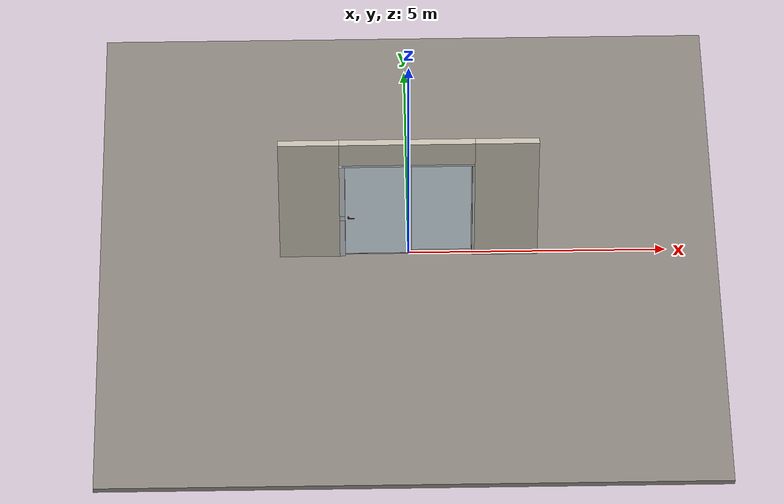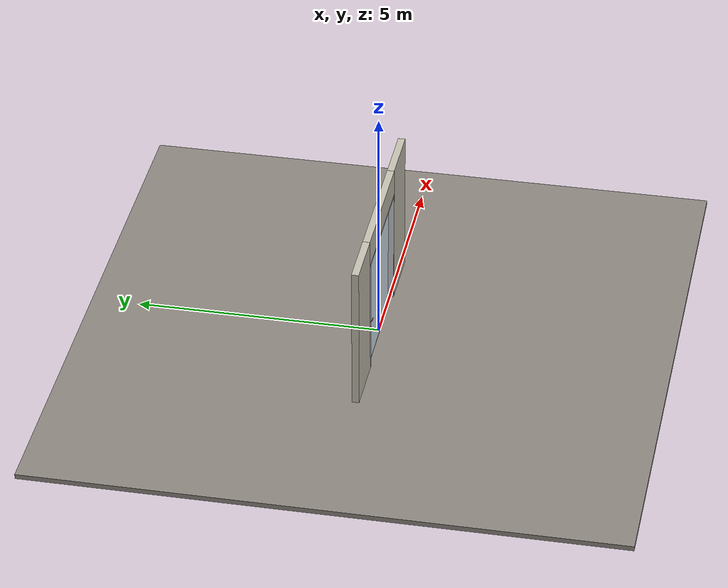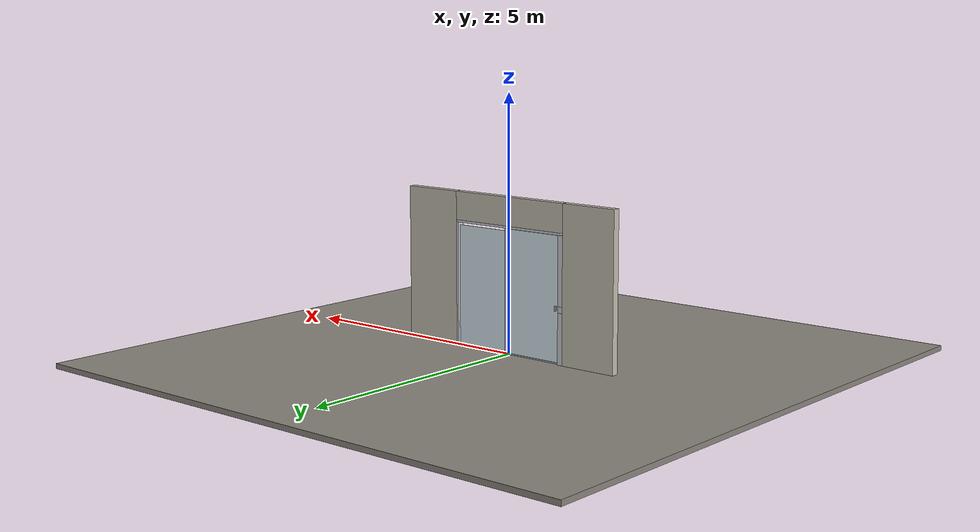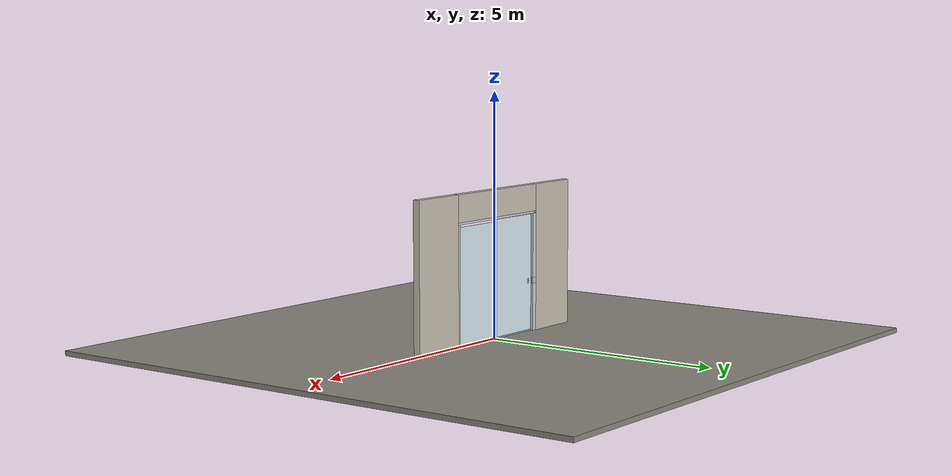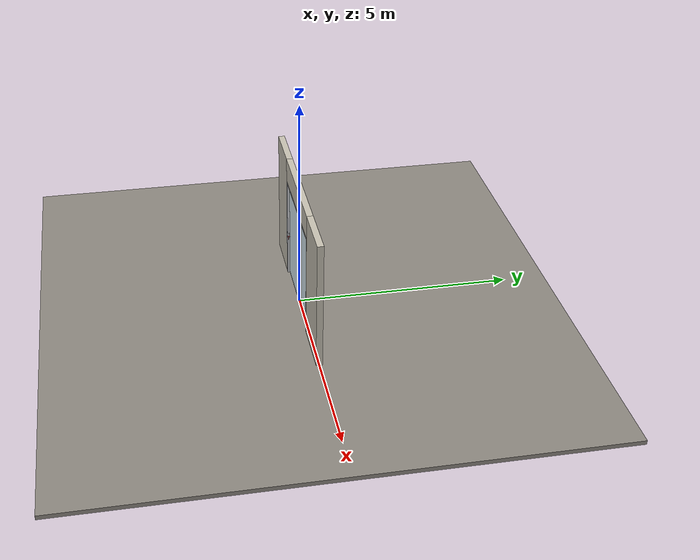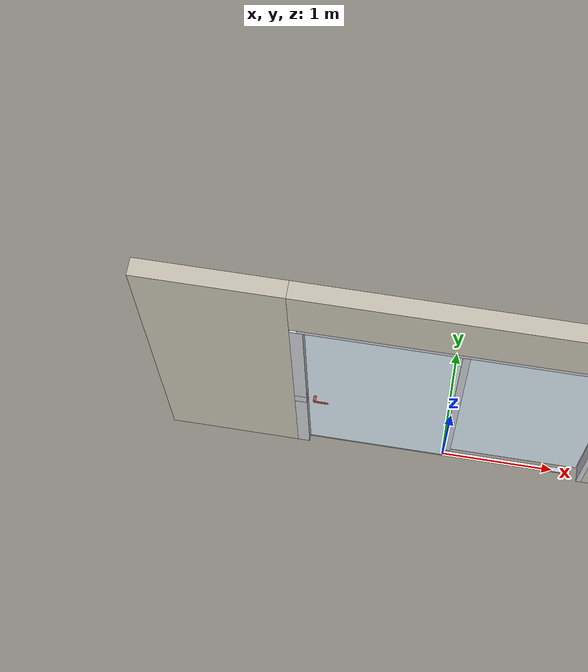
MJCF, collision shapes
<?xml version="1.0" ?>
<mujoco model="db0724_sliding_single_full">
  <compiler angle="radian" meshdir="../../hardware" texturedir="../../textures" autolimits="true" inertiafromgeom="false"/>
  <option timestep="0.002" integrator="implicitfast" cone="elliptic" impratio="10" noslip_iterations="3">
    <flag multiccd="enable"/>
  </option>
  <size memory="16M"/>
  <default>
    <geom condim="4" solref="0.005 1" solimp="0.95 0.99 0.001"/>
    <joint solreflimit="0.005 1" solimplimit="0.95 0.99 0.001"/>
    <tendon solreflimit="0.005 1"/>
    <equality solref="0.002 1"/>
  </default>
  <visual>
    <headlight ambient="0.4 0.4 0.4" diffuse="0.7 0.7 0.7" specular="0.2 0.2 0.2"/>
    <quality shadowsize="4096"/>
    <map znear="0.01" zfar="60"/>
  </visual>
  <asset>
    <mesh name="lever_57205841c3" file="lever_57205841c3.obj"/>
    <material name="mat_floor" rgba="0.55 0.53 0.5 1" specular="0.2" shininess="0.15" reflectance="0"/>
    <material name="mat_wall" rgba="0.78 0.76 0.7 1" specular="0.2" shininess="0.1" reflectance="0"/>
    <material name="mat_frame" rgba="0.8 0.81 0.83 1" specular="0.8" shininess="0.6" reflectance="0.4"/>
    <material name="mat_track" rgba="0.8 0.81 0.83 1" specular="0.8" shininess="0.6" reflectance="0.4"/>
    <material name="mat_fixed_glass" rgba="0.85 0.92 0.95 0.25" specular="0.2" shininess="0.95" reflectance="0.1"/>
    <material name="mat_leaf" rgba="0.85 0.92 0.95 0.25" specular="0.2" shininess="0.95" reflectance="0.1"/>
    <material name="mat_glass_leaf" rgba="0.85 0.92 0.95 0.25" specular="0.2" shininess="0.95" reflectance="0.1"/>
    <material name="mat_patch" rgba="0.75 0.76 0.77 1" specular="0.8" shininess="0.65" reflectance="0.4"/>
    <material name="mat_roller" rgba="0.65 0.66 0.68 1" specular="0.74" shininess="0.5" reflectance="0.36"/>
    <material name="mat_op_black_matte_metal" rgba="0.05 0.05 0.05 1" specular="0.38" shininess="0.3" reflectance="0.12"/>
    <material name="mat_trim" rgba="0.85 0.66 0.3 1" specular="0.8" shininess="0.75" reflectance="0.4"/>
    <material name="mat_op_nickel_satin" rgba="0.72 0.7 0.66 1" specular="0.8" shininess="0.65" reflectance="0.4"/>
    <material name="mat_hook" rgba="0.75 0.76 0.77 1" specular="0.8" shininess="0.65" reflectance="0.4"/>
    <texture name="skybox" type="skybox" builtin="gradient" rgb1="0.6 0.7 0.85" rgb2="0.9 0.92 0.95" width="256" height="256"/>
  </asset>
  <worldbody>
    <light name="sun" pos="1.5 -2.5 4" dir="-0.3 0.5 -0.8" directional="true" diffuse="0.8 0.8 0.8" specular="0.3 0.3 0.3" castshadow="true"/>
    <light name="fill" pos="-1.5 2.5 3" dir="0.3 -0.5 -0.7" directional="true" diffuse="0.35 0.35 0.4" castshadow="false"/>
    <camera name="robot_view" pos="0 -2.929375 2.042725" xyaxes="1 0 0 0 0.26963 0.962964" fovy="52"/>
    <camera name="far_view" pos="0 2.929375 2.042725" xyaxes="-1 0 0 0 -0.26963 0.962964" fovy="52"/>
    <camera name="iso" pos="2.226325 -2.460675 2.511425" xyaxes="0.741536 0.670913 0 -0.242917 0.268487 0.932151" fovy="46"/>
    <camera name="detail_handle" pos="-0.954 -0.7775 1.33" xyaxes="0.97561 0.219512 0 -0.070934 0.315262 0.94635" fovy="38"/>
    <geom name="floor" type="box" size="6 6 0.05" pos="0 0 -0.05" material="mat_floor" group="0" contype="1" conaffinity="1" friction="0.8 0.005 0.0001" density="2400"/>
    <geom name="wall_left" type="box" size="0.583 0.0725 1.5225" pos="-1.917 0 1.5225" material="mat_wall" group="0" contype="1" conaffinity="1" friction="0.6 0.005 0.0001" density="800"/>
    <geom name="wall_right" type="box" size="0.613 0.0725 1.5225" pos="1.887 0 1.5225" material="mat_wall" group="0" contype="1" conaffinity="1" friction="0.6 0.005 0.0001" density="800"/>
    <geom name="wall_header" type="box" size="1.304 0.0725 0.2775" pos="-0.03 0 2.7675" material="mat_wall" group="0" contype="1" conaffinity="1" friction="0.6 0.005 0.0001" density="800"/>
    <geom name="jamb_r" type="box" size="0.0225 0.0725 1.2225" pos="1.2515 0 1.2225" material="mat_frame" group="0" contype="1" conaffinity="1" friction="0.6 0.005 0.0001" density="300"/>
    <geom name="jamb_head" type="box" size="1.274 0.0725 0.0225" pos="0 0 2.4675" material="mat_frame" group="0" contype="1" conaffinity="1" friction="0.6 0.005 0.0001" density="300"/>
    <geom name="fixed_panel_glass" type="box" size="0.5945 0.003 1.1725" pos="0.6145 0.04 1.2225" material="mat_fixed_glass" group="0" contype="1" conaffinity="1" friction="0.6 0.005 0.0001" density="2500"/>
    <geom name="fixed_panel_stile" type="box" size="0.03 0.012 1.2225" pos="0.03 0.0475 1.2225" material="mat_frame" group="0" contype="1" conaffinity="1" friction="0.6 0.005 0.0001" density="1400"/>
    <geom name="bottom_rail" type="box" size="1.22 0.02 0.012" pos="-0.054 0 0.012" material="mat_track" group="0" contype="1" conaffinity="1" friction="0.6 0.005 0.0001" density="2700"/>
    <geom name="leaf_hook_keeper" type="box" size="0.008 0.015 0.006" pos="-1.242 0 1.05" material="mat_hook" group="0" contype="1" conaffinity="1" friction="0.6 0.005 0.0001" density="7900"/>
    <geom name="jamb_latch_pwall_1050_n" type="box" size="0.0525 0.022 0.06" pos="-1.2815 -0.0505 1.05" material="mat_frame" group="0" contype="1" conaffinity="1" friction="0.6 0.005 0.0001" density="300"/>
    <geom name="jamb_latch_pwall_1050_p" type="box" size="0.0525 0.022 0.06" pos="-1.2815 0.0505 1.05" material="mat_frame" group="0" contype="1" conaffinity="1" friction="0.6 0.005 0.0001" density="300"/>
    <geom name="jamb_latch_pback_1050" type="box" size="0.004 0.0285 0.06" pos="-1.33 0 1.05" material="mat_frame" group="0" contype="1" conaffinity="1" friction="0.6 0.005 0.0001" density="300"/>
    <geom name="jamb_latch_0" type="box" size="0.0525 0.0725 0.495" pos="-1.2815 0 0.495" material="mat_frame" group="0" contype="1" conaffinity="1" friction="0.6 0.005 0.0001" density="300"/>
    <geom name="jamb_latch_1" type="box" size="0.0525 0.0725 0.6675" pos="-1.2815 0 1.7775" material="mat_frame" group="0" contype="1" conaffinity="1" friction="0.6 0.005 0.0001" density="300"/>
    <geom name="leaf_hook_keeper_plate_b" type="box" size="0.0345 0.003 0.0005" pos="-1.2285 0 0.987" quat="0.5 0.5 0.5 0.5" material="mat_hook" group="1" contype="0" conaffinity="0" density="7800"/>
    <geom name="leaf_hook_keeper_plate_l" type="box" size="0.003 0.06 0.0005" pos="-1.2285 -0.0315 1.05" quat="0.5 0.5 0.5 0.5" material="mat_hook" group="1" contype="0" conaffinity="0" density="7800"/>
    <geom name="leaf_hook_keeper_plate_t" type="box" size="0.0345 0.003 0.0005" pos="-1.2285 0 1.113" quat="0.5 0.5 0.5 0.5" material="mat_hook" group="1" contype="0" conaffinity="0" density="7800"/>
    <geom name="leaf_hook_keeper_plate_r" type="box" size="0.003 0.06 0.0005" pos="-1.2285 0.0315 1.05" quat="0.5 0.5 0.5 0.5" material="mat_hook" group="1" contype="0" conaffinity="0" density="7800"/>
    <geom name="leaf_hook_keeper_bracket" type="box" size="0.0064 0.00725 0.005" pos="-1.242 0.02175 1.05" material="mat_hook" group="1" contype="0" conaffinity="0" density="7850"/>
    <site name="approach_point" pos="0 -1.5 0" quat="1 0 0 0" size="0.05" rgba="0.2 0.9 0.2 0.5" group="4"/>
    <site name="goal_point" pos="0 1.5 0" quat="1 0 0 0" size="0.05" rgba="0.2 0.9 0.2 0.5" group="4"/>
    <site name="door_plane_center" pos="0 0 1.2225" quat="1 0 0 0" size="0.02" rgba="0.2 0.9 0.2 0.5" group="4"/>
    <body name="leaf" pos="-0.6145 0 0">
      <inertial pos="-0.000147 0.000001 1.228102" mass="205.281755" quat="0.500034 -0.500036 -0.499964 -0.499966" diaginertia="25.49843913 98.850834622 124.28008789"/>
      <joint name="leaf_slide" type="slide" axis="1 0 0" limited="true" range="0 1.121" damping="12.289227" frictionloss="60.541711" armature="0.5"/>
      <geom name="leaf_glass" type="box" size="0.6095 0.0225 1.2" pos="0 0 1.23" material="mat_glass_leaf" group="0" contype="1" conaffinity="1" friction="0.4 0.005 0.0001" density="1"/>
      <geom name="leaf_roller_0" type="cylinder" size="0.015 0.008" pos="-0.4945 0 0.039" quat="0.707107 -0.707107 0 0" material="mat_roller" group="1" contype="0" conaffinity="0" density="7850"/>
      <geom name="leaf_roller_1" type="cylinder" size="0.015 0.008" pos="0.4645 0 0.039" quat="0.707107 -0.707107 0 0" material="mat_roller" group="1" contype="0" conaffinity="0" density="7850"/>
      <geom name="leaf_ext_pull_p" type="box" size="0.025 0.0005 0.05" pos="-0.5195 0.023 1.05" material="mat_op_nickel_satin" group="1" contype="0" conaffinity="0" density="1000"/>
      <geom name="leaf_hook_faceplate" type="box" size="0.0006 0.011 0.045" pos="-0.6089 0 1.05" material="mat_hook" group="1" contype="0" conaffinity="0" density="7900"/>
      <site name="leaf_ext_pull_grip_p" pos="-0.5195 0.0225 1.05" quat="1 0 0 0" size="0.012" rgba="0.2 0.9 0.2 0.5" group="4"/>
      <site name="leaf_edge_mid" pos="-0.6095 0 1.23" quat="1 0 0 0" size="0.02" rgba="0.2 0.9 0.2 0.5" group="4"/>
      <body name="leaf_handle" pos="-0.5495 0 1.05">
        <inertial pos="0.017248 -0.047626 0" mass="0.430744" quat="0.299866 0 0 0.953981" diaginertia="0.000194323 0.000667311 0.000808833"/>
        <joint name="leaf_handle_hinge" type="hinge" axis="0 1 0" limited="true" range="0 0.87" damping="0.206307" frictionloss="0.042" stiffness="1" springref="-0.35" armature="0.01"/>
        <geom name="leaf_handle_spindle" type="cylinder" size="0.006 0.0305" pos="0 0 0" quat="0.707107 -0.707107 0 0" material="mat_op_black_matte_metal" group="1" contype="0" conaffinity="0" density="7850"/>
        <geom name="leaf_handle_lever_n" type="mesh" mesh="lever_57205841c3" pos="0 -0.0225 0" quat="0 0 -0.707107 0.707107" material="mat_op_black_matte_metal" group="1" contype="0" conaffinity="0" density="3000"/>
        <geom name="leaf_handle_lever_col_n" type="capsule" size="0.007 0.053" pos="0.06 -0.0775 0" quat="0.707107 0 0.707107 0" material="mat_op_black_matte_metal" group="3" contype="1" conaffinity="1" rgba="0.8 0.3 0.3 0.25" friction="0.7 0.01 0.0001" density="3000"/>
        <geom name="leaf_handle_hub_col_n" type="cylinder" size="0.012 0.022" pos="0 -0.0525 0" quat="0.707107 -0.707107 0 0" material="mat_op_black_matte_metal" group="3" contype="1" conaffinity="1" rgba="0.8 0.3 0.3 0.25" friction="0.6 0.005 0.0001" density="3000"/>
        <site name="leaf_handle_grip_n" pos="0.096 -0.0775 0" quat="1 0 0 0" size="0.012" rgba="0.2 0.9 0.2 0.5" group="4"/>
      </body>
      <body name="leaf_hook" pos="-0.6095 0 1.05">
        <inertial pos="-0.026737 0 -0.009263" mass="0.072048" quat="0.200817 0.200817 -0.677991 0.677991" diaginertia="0.000005266 0.00001511 0.000019175"/>
        <joint name="leaf_hook_hinge" type="hinge" axis="0 -1 0" limited="true" range="0 1" damping="0.05" frictionloss="0.1" armature="0.005"/>
        <geom name="leaf_hook_arm" type="box" size="0.022 0.005 0.006" pos="-0.02 0 -0.016" material="mat_hook" group="0" contype="1" conaffinity="1" friction="0.6 0.005 0.0001" density="7900"/>
        <geom name="leaf_hook_tip" type="box" size="0.006 0.005 0.016" pos="-0.036 0 0" material="mat_hook" group="0" contype="1" conaffinity="1" friction="0.6 0.005 0.0001" density="7900"/>
      </body>
    </body>
  </worldbody>
  <equality>
    <joint name="leaf_hook_couple" joint1="leaf_hook_hinge" joint2="leaf_handle_hinge" polycoef="0 1 0 0 0" active="true"/>
  </equality>
  <sensor>
    <jointpos name="leaf_slide_pos" joint="leaf_slide"/>
    <jointvel name="leaf_slide_vel" joint="leaf_slide"/>
    <jointpos name="leaf_handle_hinge_pos" joint="leaf_handle_hinge"/>
    <jointvel name="leaf_handle_hinge_vel" joint="leaf_handle_hinge"/>
    <jointpos name="leaf_hook_hinge_pos" joint="leaf_hook_hinge"/>
    <jointvel name="leaf_hook_hinge_vel" joint="leaf_hook_hinge"/>
  </sensor>
</mujoco>
